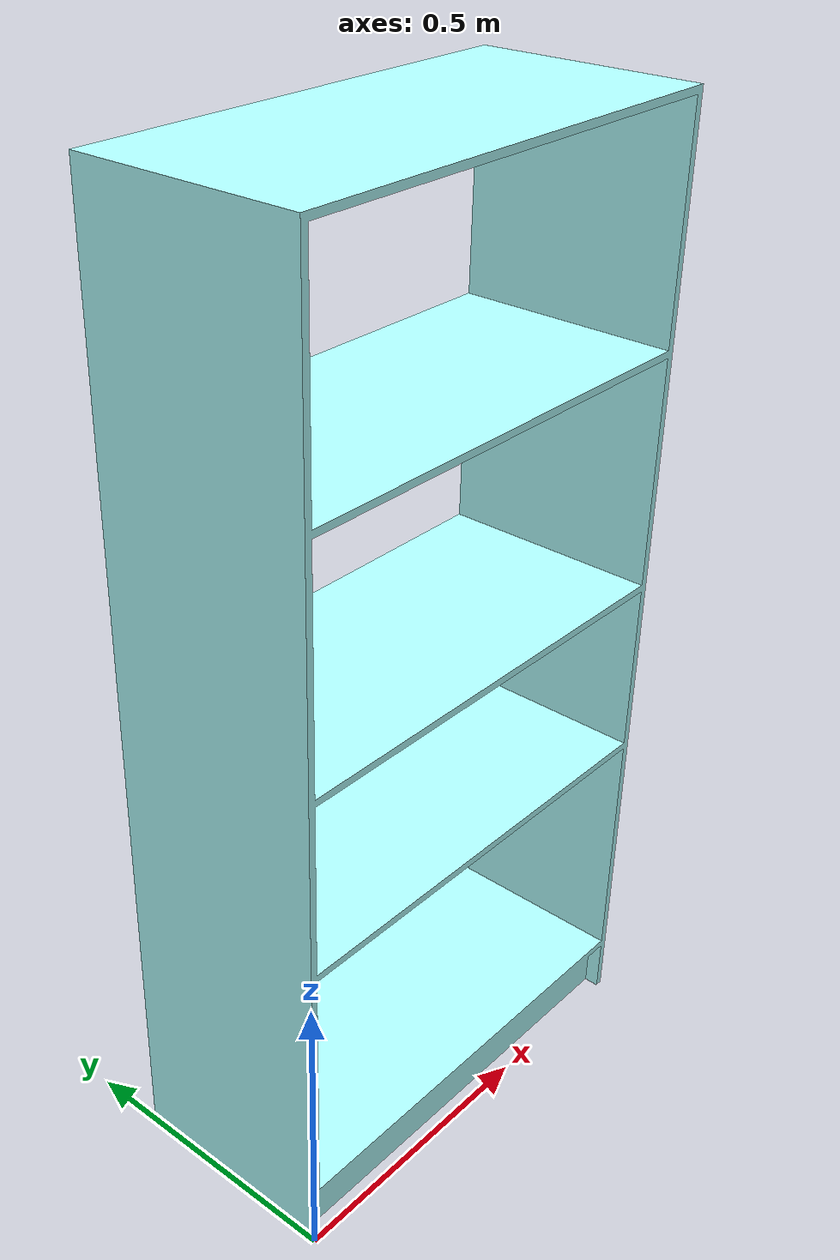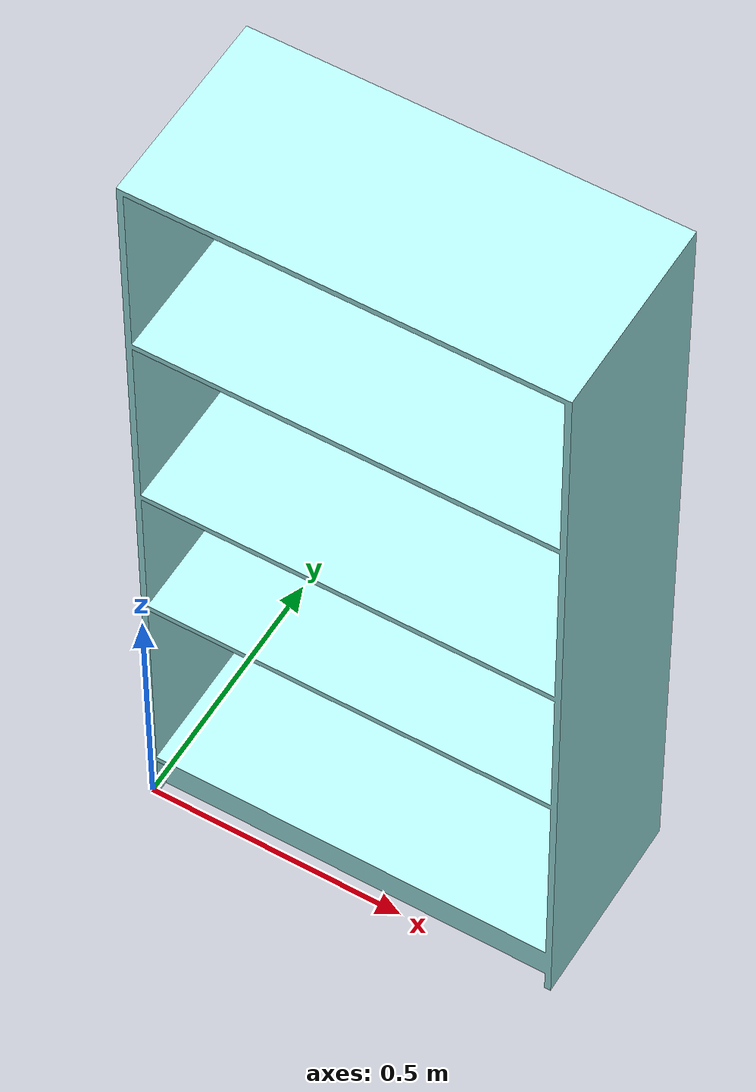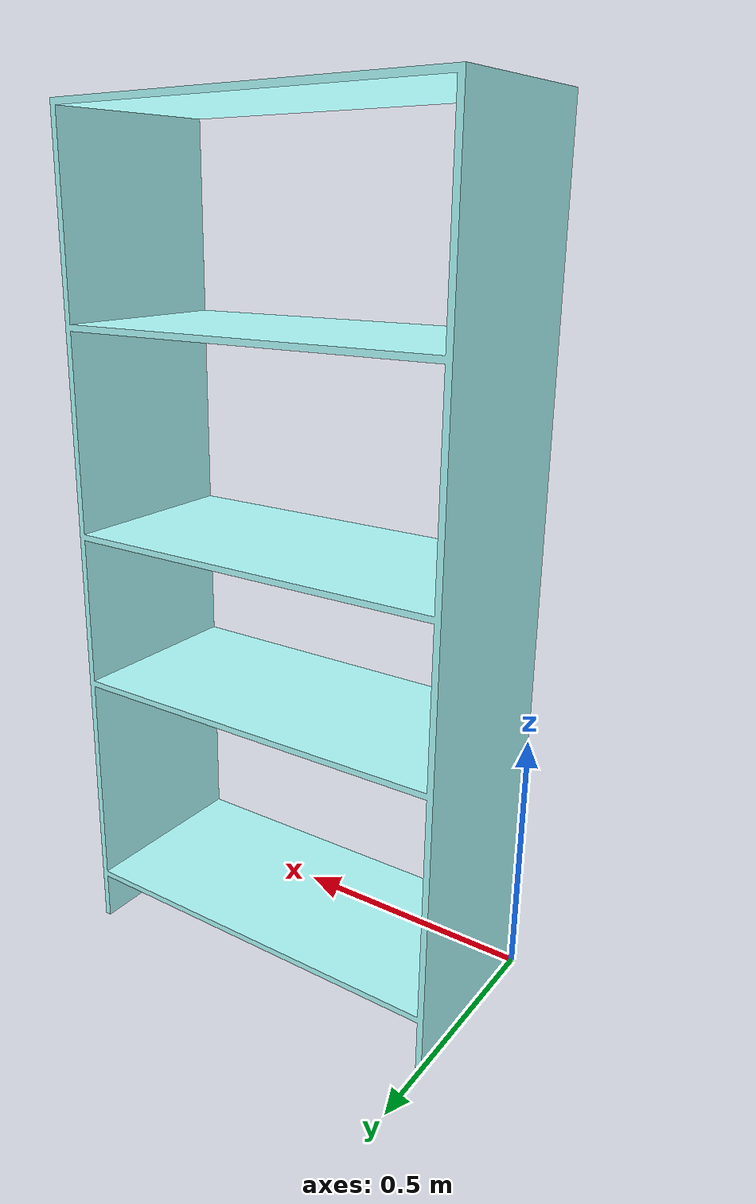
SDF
<?xml version="1.0"?>
<sdf version='1.6'>
  <model name='Shelf_FL'>
    <link name='Shelf_FL'>
      <pose frame=''>0 0 0 0 -0 0</pose>
      <inertial>
        <pose frame=''>0.398 0.18108 0.82092 0 -0 0</pose>
        <mass>33.816</mass>
        <inertia>
          <ixx>9.7591</ixx>
          <ixy>1.4536e-16</ixy>
          <ixz>-3.7964e-15</ixz>
          <iyy>12.571</iyy>
          <iyz>0.18041</iyz>
          <izz>3.6409</izz>
        </inertia>
      </inertial>
      <collision name='Shelf_FL_collision'>
        <pose frame=''>0 0 0 1.5708 -0 0</pose>
        <geometry>
          <mesh>
            <scale>1 1 1</scale>
            <uri>model://Shelf_FL/meshes/Shelf_FL.dae</uri>
          </mesh>
        </geometry>
      </collision>
      <visual name='Shelf_FL_visual'>
        <pose frame=''>0 0 0 1.5708 -0 0</pose>
        <geometry>
          <mesh>
            <scale>1 1 1</scale>
            <uri>model://Shelf_FL/meshes/Shelf_FL.dae</uri>
          </mesh>
        </geometry>
      </visual>
    </link>
  </model>
</sdf>
